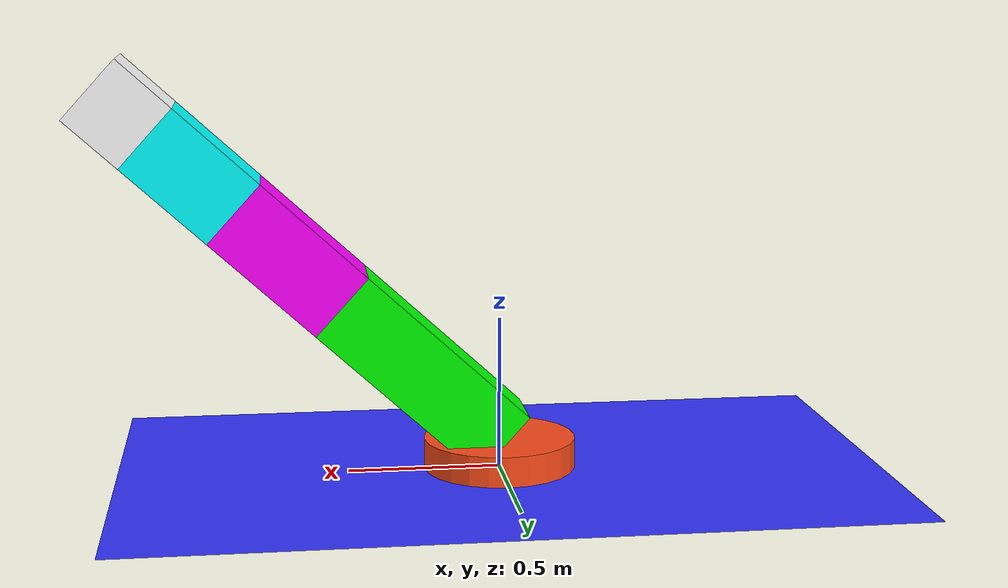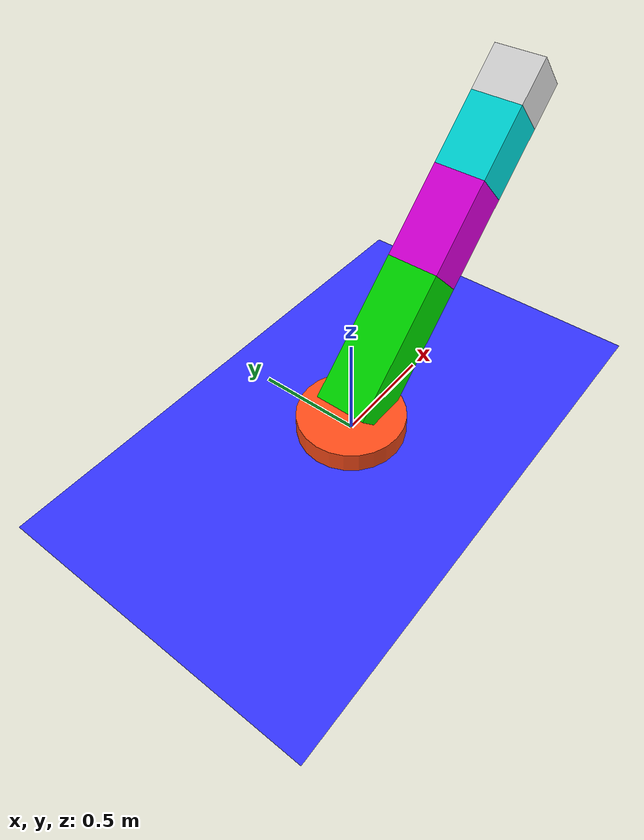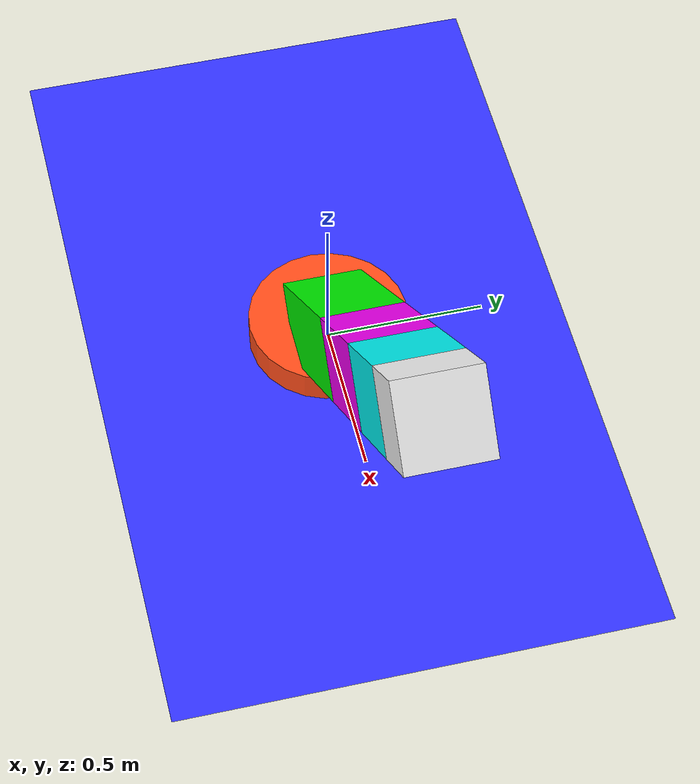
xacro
<?xml version="1.0"?>
<robot xmlns:xacro="http://www.ros.org/wiki/xacro" name="arm">

    <xacro:include filename="dimensions.xacro"/>
    <xacro:include filename="../materials.xacro"/>
    <xacro:include filename="../inertias.xacro"/>

    <link name="world"></link>

    <joint name="base_joint" type="fixed">
        <parent link="world"/>
        <child link="base_link"/>
        <origin xyz="0.0 0.0 0.0" rpy="0.0 0.0 0.0"/>
    </joint>

    <link name="base_link">

        <visual>
            <origin xyz="0.0 0.0 ${base_height/2}" rpy="0.0 0.0 0.0"/>
            <geometry>
                <box size="${base_length} ${base_width} ${base_height}"/>
            </geometry>

            <material name="blue"></material>
        </visual>

        <collision>
            <origin xyz="0.0 0.0 ${base_height/2}" rpy="0.0 0.0 0.0"/>
            <geometry>
                <box size="${base_length} ${base_width} ${base_height}"/>
            </geometry>
        </collision>

        <xacro:inertial_box mass="1" length="0" width="0" height="0">
            <origin xyz="0.0 0.0 0.0" rpy="0.0 0.0 0.0"/>
        </xacro:inertial_box>
    </link>

    <joint name="axis1" type="revolute">
        <parent link="base_link"/>
        <child link="link1"/>
        <axis xyz="0 0 1"/>
        <limit lower="${axis1_lower}" upper="${axis1_upper}" velocity="50.0" effort="1000.0"/>
        <origin xyz="0 0 0" rpy="0 0 0"/>
        <dynamics damping="10.0" friction="10.0"/>
    </joint>

    <link name="link1">
        <visual>
            <origin xyz="0.0 0.0 ${link1_length/2}" rpy="0.0 0.0 0.0"/>
            <geometry>
                <cylinder radius="${link1_radius}" length="${link1_length}"/>
            </geometry>

            <material name="orange"></material>
        </visual>

        <collision>
            <origin xyz="0.0 0.0 ${link1_length/2}" rpy="0.0 0.0 0.0"/>
            <geometry>
                <cylinder radius="${link1_radius}" length="${link1_length}"/>
            </geometry>
        </collision>

        <xacro:inertial_cylinder mass="1" length="${link1_length}" radius="${link1_radius}">
            <origin xyz="${link1_length/2} 0.0 0.0" rpy="0.0 0.0 0.0"/>
        </xacro:inertial_cylinder>
    </link>

    <joint name="axis2" type="revolute">
        <parent link="link1"/>
        <child link="link2"/>
        <axis xyz="0 1 0"/>
        <limit lower="${axis2_lower}" upper="${axis2_upper}" velocity="50.0" effort="1000.0"/>
        <origin xyz="0 0 ${base_height + link1_length}" rpy="0 0 0"/>
        <dynamics damping="10.0" friction="10.0"/>
    </joint>

    <link name="link2">
        <visual>
            <origin xyz="0.0 0.0 ${link2_length / 2}" rpy="0.0 ${pi / 2} 0.0"/>
            <geometry>
                <box size="${link2_length} ${link2_width} ${link2_height}"/>
            </geometry>

            <material name="green"></material>
        </visual>

        <collision>
            <origin xyz="0.0 0.0 ${link2_length / 2}" rpy="0.0 0.0 0.0"/>
            <geometry>
                <box size="${link2_length} ${link2_width} ${link2_height}"/>
            </geometry>
        </collision>

        <xacro:inertial_box mass="1" length="${link2_length}" width="${link2_width}" height="${link2_height}">
            <origin xyz="${link2_length/2} 0.0 0.0" rpy="0.0 0.0 0.0"/>
        </xacro:inertial_box>
    </link>

    <joint name="axis3" type="revolute">
        <parent link="link2"/>
        <child link="link3"/>
        <axis xyz="0 1 0"/>
        <limit lower="${axis3_lower}" upper="${axis3_upper}" velocity="50.0" effort="1000.0"/>
        <origin xyz="0 0 ${link2_length}" rpy="0 0 0"/>
        <dynamics damping="10.0" friction="10.0"/>
    </joint>

    <link name="link3">
        <visual>
            <origin xyz="0.0 0.0 ${link3_length / 2}" rpy="0.0 ${pi / 2} 0.0"/>
            <geometry>
                <box size="${link3_length} ${link3_width} ${link3_height}"/>
            </geometry>

            <material name="magenta"></material>
        </visual>

        <collision>
            <origin xyz="0.0 0.0 ${link2_length / 2}" rpy="0.0 0.0 0.0"/>
            <geometry>
                <box size="${link3_length} ${link3_width} ${link3_height}"/>
            </geometry>
        </collision>

        <xacro:inertial_box mass="1" length="${link3_length}" width="${link3_width}" height="${link3_width}">
            <origin xyz="${link3_length} 0.0 0.0" rpy="0.0 0.0 0.0"/>
        </xacro:inertial_box>
    </link>

    <joint name="axis4" type="revolute">
        <parent link="link3"/>
        <child link="link4"/>
        <axis xyz="0 1 0"/>
        <limit lower="${axis4_lower}" upper="${axis4_upper}" velocity="50.0" effort="1000.0"/>
        <origin xyz="0 0 ${link3_length}" rpy="0 0 0"/>
        <dynamics damping="10.0" friction="10.0"/>
    </joint>

    <link name="link4">
        <visual>
            <origin xyz="0.0 0.0 ${link4_length / 2}" rpy="0.0 ${pi / 2} 0.0"/>
            <geometry>
                <box size="${link4_length} ${link4_width} ${link4_height}"/>
            </geometry>

            <material name="cyan"></material>
        </visual>

        <collision>
            <origin xyz="0.0 0.0 ${link3_length / 2}" rpy="0.0 0.0 0.0"/>
            <geometry>
                <box size="${link4_length} ${link4_width} ${link4_height}"/>
            </geometry>
        </collision>

        <xacro:inertial_box mass="1" length="${link4_length}" width="${link4_width}" height="${link4_width}">
            <origin xyz="${link4_length} 0.0 0.0" rpy="0.0 0.0 0.0"/>
        </xacro:inertial_box>
    </link>

    <joint name="axis5" type="revolute">
        <parent link="link4"/>
        <child link="link5"/>
        <axis xyz="0 0 1"/>
        <limit lower="${axis5_lower}" upper="${axis5_upper}" velocity="50.0" effort="1000.0"/>
        <origin xyz="0 0 ${link4_length}" rpy="0 0 0"/>
        <dynamics damping="10.0" friction="10.0"/>
    </joint>

    <link name="link5">
        <visual>
            <origin xyz="0.0 0.0 ${link5_length / 2}" rpy="0.0 ${pi / 2} 0.0"/>
            <geometry>
                <box size="${link5_length} ${link5_width} ${link5_height}"/>
            </geometry>

            <material name="white"></material>
        </visual>

        <collision>
            <origin xyz="0.0 0.0 ${link4_length / 2}" rpy="0.0 0.0 0.0"/>
            <geometry>
                <box size="${link5_length} ${link5_width} ${link5_height}"/>
            </geometry>
        </collision>

        <xacro:inertial_box mass="1" length="${link5_length}" width="${link5_width}" height="${link5_width}">
            <origin xyz="${link5_length} 0.0 0.0" rpy="0.0 0.0 0.0"/>
        </xacro:inertial_box>
    </link>

</robot>

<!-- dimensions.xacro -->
<robot xmlns:xacro="http://www.ros.org/wiki/xacro">

    <xacro:property name="base_length" value="2.5"/>
    <xacro:property name="base_width" value="1.5"/>
    <xacro:property name="base_height" value="0"/>

    <xacro:property name="link1_length" value="0.1"/>
    <xacro:property name="link1_radius" value="0.25"/>

    <xacro:property name="link2_length" value="0.7"/>
    <xacro:property name="link2_width" value="0.25"/>
    <xacro:property name="link2_height" value="0.25"/>

    <xacro:property name="link3_length" value=".45"/>
    <xacro:property name="link3_width" value="0.25"/>
    <xacro:property name="link3_height" value="0.25"/>

    <xacro:property name="link4_length" value="0.354"/>
    <xacro:property name="link4_width" value="0.25"/>
    <xacro:property name="link4_height" value="0.25"/>

    <xacro:property name="link5_length" value="0.225"/>
    <xacro:property name="link5_width" value="0.25"/>
    <xacro:property name="link5_height" value="0.25"/>

    <!-- Axis limits -->
    <xacro:property name="axis1_lower" value="${-160 * (pi/180)}"/>
    <xacro:property name="axis1_upper" value="${ 160 * (pi/180)}"/>

    <xacro:property name="axis2_lower" value="${  12 * (pi/180)}"/>
    <xacro:property name="axis2_upper" value="${  83 * (pi/180)}"/>

    <xacro:property name="axis3_lower" value="${-140 * (pi/180)}"/>
    <xacro:property name="axis3_upper" value="${ 140 * (pi/180)}"/>

    <xacro:property name="axis4_lower" value="${-140 * (pi/180)}"/>
    <xacro:property name="axis4_upper" value="${ 140 * (pi/180)}"/>

    <xacro:property name="axis5_lower" value="${-140 * (pi/180)}"/>
    <xacro:property name="axis5_upper" value="${ 140 * (pi/180)}"/>

</robot>

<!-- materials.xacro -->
<robot xmlns:xacro="http://www.ros.org/wiki/xacro">
    <material name="white">
        <color rgba="1 1 1 1"/>
    </material>

    <material name="orange">
        <color rgba="1 0.3 0.1 1"/>
    </material>

    <material name="blue">
        <color rgba="0.2 0.2 1 1"/>
    </material>

    <material name="green">
        <color rgba="0 1 0 1"/>
    </material>

    <material name="magenta">
        <color rgba="1 0 1 1"/>
    </material>

    <material name="cyan">
        <color rgba="0 1 1 1"/>
    </material>
</robot>

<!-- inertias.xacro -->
<robot xmlns:xacro="http://www.ros.org/wiki/xacro">
    <xacro:macro name="inertial_sphere" params="mass radius *origin">
        <inertial>
            <xacro:insert_block name="origin"/>
            <mass value="${mass}" />
            <inertia ixx="${(2/5) * mass * (radius*radius)}" ixy="0.0" ixz="0.0"
                    iyy="${(2/5) * mass * (radius*radius)}" iyz="0.0"
                    izz="${(2/5) * mass * (radius*radius)}" />
        </inertial>
    </xacro:macro>

    <xacro:macro name="inertial_box" params="mass length width height *origin">
        <inertial>
            <xacro:insert_block name="origin"/>
            <mass value="${mass}" />
            <inertia ixx="${(1/12) * mass * (width*width+height*height)}" ixy="0.0" ixz="0.0"
                    iyy="${(1/12) * mass * (length*length+height*height)}" iyz="0.0"
                    izz="${(1/12) * mass * (length*length+width*width)}" />
        </inertial>
    </xacro:macro>

    <xacro:macro name="inertial_cylinder" params="mass length radius *origin">
        <inertial>
            <xacro:insert_block name="origin"/>
            <mass value="${mass}" />
            <inertia ixx="${(1/12) * mass * (3*radius*radius + length*length)}" ixy="0.0" ixz="0.0"
                    iyy="${(1/12) * mass * (3*radius*radius + length*length)}" iyz="0.0"
                    izz="${(1/2) * mass * (radius*radius)}" />
        </inertial>
    </xacro:macro>
</robot>
